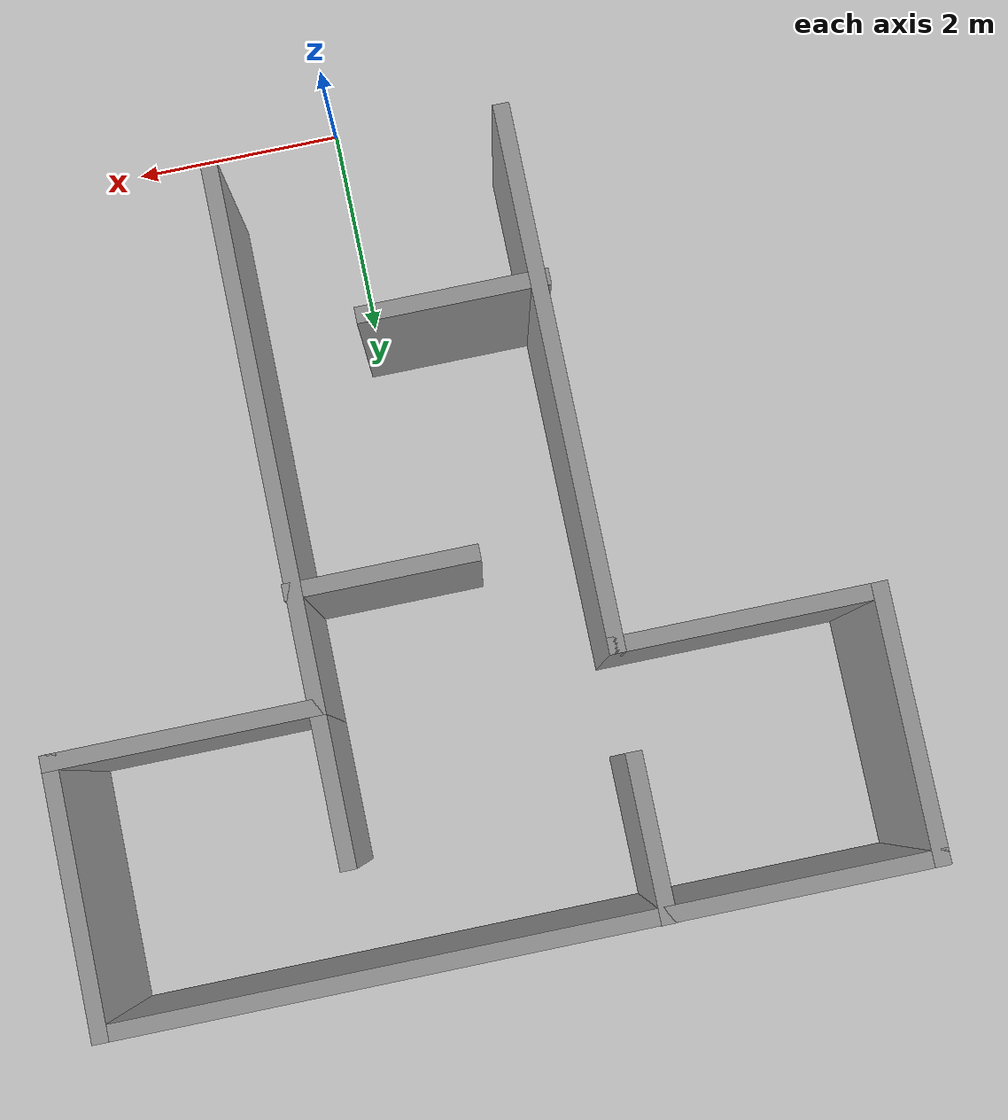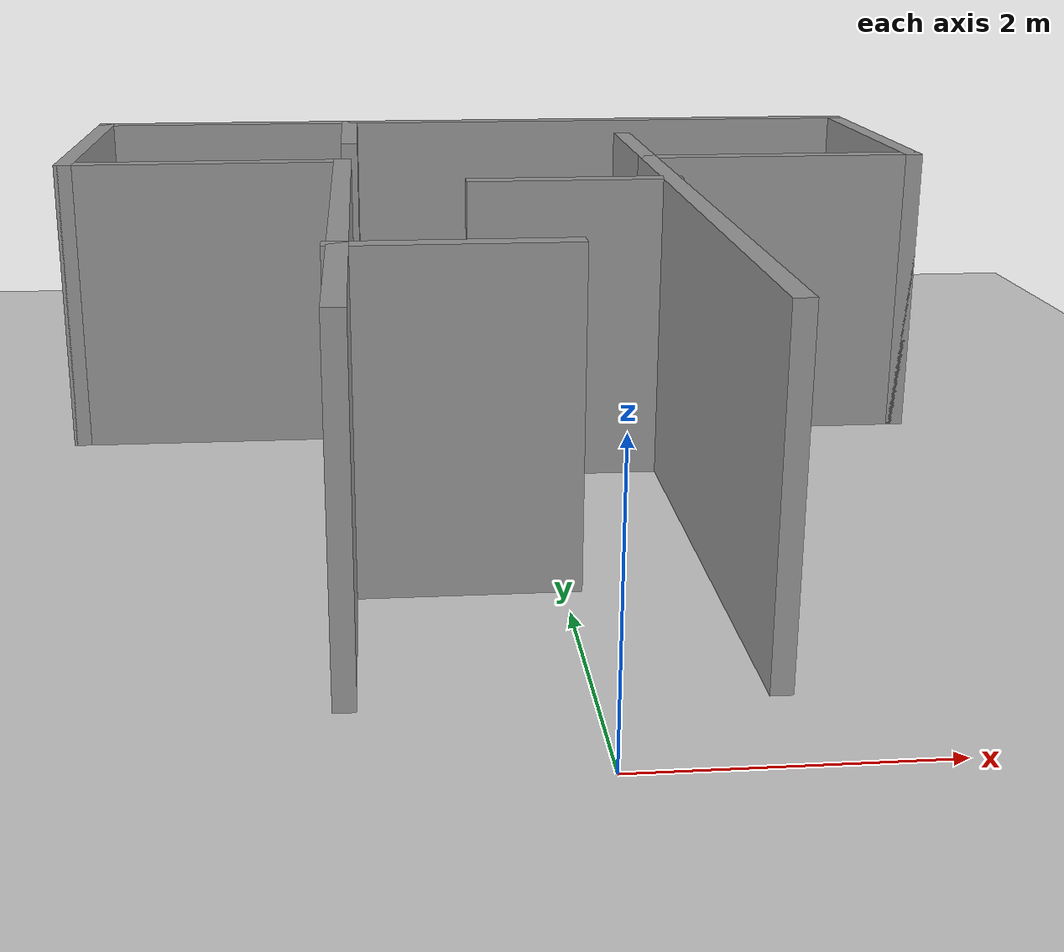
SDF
<?xml version="1.0" ?>
<sdf version="1.4">
  <world name="default">
    <include>
      <uri>model://ground_plane</uri>
    </include>
    <include>
      <uri>model://sun</uri>
    </include>
    <model name='test_world'>
    <pose frame=''>-0.193 4.45698 0 0 -0 0</pose>
    <link name='Wall_11'>
      <collision name='Wall_11_Collision'>
        <geometry>
          <box>
            <size>2.5 0.15 2.5</size>
          </box>
        </geometry>
        <pose frame=''>0 0 1.25 0 -0 0</pose>
      </collision>
      <visual name='Wall_11_Visual'>
        <pose frame=''>0 0 1.25 0 -0 0</pose>
        <geometry>
          <box>
            <size>2.5 0.15 2.5</size>
          </box>
        </geometry>
        <material>
          <script>
            <uri>file://media/materials/scripts/gazebo.material</uri>
            <name>Gazebo/Grey</name>
          </script>
          <ambient>1 1 1 1</ambient>
        </material>
        <meta>
          <layer>0</layer>
        </meta>
      </visual>
      <pose frame=''>3.675 2.42302 0 0 -0 1.5708</pose>
    </link>
    <link name='Wall_12'>
      <collision name='Wall_12_Collision'>
        <geometry>
          <box>
            <size>7.5 0.15 2.5</size>
          </box>
        </geometry>
        <pose frame=''>0 0 1.25 0 -0 0</pose>
      </collision>
      <visual name='Wall_12_Visual'>
        <pose frame=''>0 0 1.25 0 -0 0</pose>
        <geometry>
          <box>
            <size>7.5 0.15 2.5</size>
          </box>
        </geometry>
        <material>
          <script>
            <uri>file://media/materials/scripts/gazebo.material</uri>
            <name>Gazebo/Grey</name>
          </script>
          <ambient>1 1 1 1</ambient>
        </material>
        <meta>
          <layer>0</layer>
        </meta>
      </visual>
      <pose frame=''>-0 3.59802 0 0 -0 3.14159</pose>
    </link>
    <link name='Wall_16'>
      <collision name='Wall_16_Collision'>
        <geometry>
          <box>
            <size>2.5 0.15 2.5</size>
          </box>
        </geometry>
        <pose frame=''>0 0 1.25 0 -0 0</pose>
      </collision>
      <visual name='Wall_16_Visual'>
        <pose frame=''>0 0 1.25 0 -0 0</pose>
        <geometry>
          <box>
            <size>2.5 0.15 2.5</size>
          </box>
        </geometry>
        <material>
          <script>
            <uri>file://media/materials/scripts/gazebo.material</uri>
            <name>Gazebo/Grey</name>
          </script>
          <ambient>1 1 1 1</ambient>
        </material>
        <meta>
          <layer>0</layer>
        </meta>
      </visual>
      <pose frame=''>-3.675 2.42302 0 0 -0 -1.5708</pose>
    </link>
    <link name='Wall_17'>
      <collision name='Wall_17_Collision'>
        <geometry>
          <box>
            <size>2.5 0.15 2.5</size>
          </box>
        </geometry>
        <pose frame=''>0 0 1.25 0 -0 0</pose>
      </collision>
      <visual name='Wall_17_Visual'>
        <pose frame=''>0 0 1.25 0 -0 0</pose>
        <geometry>
          <box>
            <size>2.5 0.15 2.5</size>
          </box>
        </geometry>
        <material>
          <script>
            <uri>file://media/materials/scripts/gazebo.material</uri>
            <name>Gazebo/Grey</name>
          </script>
          <ambient>1 1 1 1</ambient>
        </material>
        <meta>
          <layer>0</layer>
        </meta>
      </visual>
      <pose frame=''>-2.5 1.24802 0 0 -0 0</pose>
    </link>
    <link name='Wall_19'>
      <collision name='Wall_19_Collision'>
        <geometry>
          <box>
            <size>5 0.15 2.5</size>
          </box>
        </geometry>
        <pose frame=''>0 0 1.25 0 -0 0</pose>
      </collision>
      <visual name='Wall_19_Visual'>
        <pose frame=''>0 0 1.25 0 -0 0</pose>
        <geometry>
          <box>
            <size>5 0.15 2.5</size>
          </box>
        </geometry>
        <material>
          <script>
            <uri>file://media/materials/scripts/gazebo.material</uri>
            <name>Gazebo/Grey</name>
          </script>
          <ambient>1 1 1 1</ambient>
        </material>
        <meta>
          <layer>0</layer>
        </meta>
      </visual>
      <pose frame=''>-1.325 -1.17698 0 0 -0 -1.5708</pose>
    </link>
    <link name='Wall_21'>
      <collision name='Wall_21_Collision'>
        <geometry>
          <box>
            <size>1.75 0.15 2.5</size>
          </box>
        </geometry>
        <pose frame=''>0 0 1.25 0 -0 0</pose>
      </collision>
      <visual name='Wall_21_Visual'>
        <pose frame=''>0 0 1.25 0 -0 0</pose>
        <geometry>
          <box>
            <size>1.75 0.15 2.5</size>
          </box>
        </geometry>
        <material>
          <script>
            <uri>file://media/materials/scripts/gazebo.material</uri>
            <name>Gazebo/Grey</name>
          </script>
          <ambient>1 1 1 1</ambient>
        </material>
        <meta>
          <layer>0</layer>
        </meta>
      </visual>
      <pose frame=''>-0.557944 -2.05685 0 0 -0 0</pose>
    </link>
    <link name='Wall_23'>
      <collision name='Wall_23_Collision'>
        <geometry>
          <box>
            <size>1.75 0.15 2.5</size>
          </box>
        </geometry>
        <pose frame=''>0 0 1.25 0 -0 0</pose>
      </collision>
      <visual name='Wall_23_Visual'>
        <pose frame=''>0 0 1.25 0 -0 0</pose>
        <geometry>
          <box>
            <size>1.75 0.15 2.5</size>
          </box>
        </geometry>
        <material>
          <script>
            <uri>file://media/materials/scripts/gazebo.material</uri>
            <name>Gazebo/Grey</name>
          </script>
          <ambient>1 1 1 1</ambient>
        </material>
        <meta>
          <layer>0</layer>
        </meta>
      </visual>
      <pose frame=''>0.54335 0.215339 0 0 -0 3.14159</pose>
    </link>
    <link name='Wall_25'>
      <collision name='Wall_25_Collision'>
        <geometry>
          <box>
            <size>1.5 0.15 2.5</size>
          </box>
        </geometry>
        <pose frame=''>0 0 1.25 0 -0 0</pose>
      </collision>
      <visual name='Wall_25_Visual'>
        <pose frame=''>0 0 1.25 0 -0 0</pose>
        <geometry>
          <box>
            <size>1.5 0.15 2.5</size>
          </box>
        </geometry>
        <material>
          <script>
            <uri>file://media/materials/scripts/gazebo.material</uri>
            <name>Gazebo/Grey</name>
          </script>
          <ambient>1 1 1 1</ambient>
        </material>
        <meta>
          <layer>0</layer>
        </meta>
      </visual>
      <pose frame=''>-1.27594 2.92698 0 0 -0 -1.5708</pose>
    </link>
    <link name='Wall_27'>
      <collision name='Wall_27_Collision'>
        <geometry>
          <box>
            <size>1.5 0.15 2.5</size>
          </box>
        </geometry>
        <pose frame=''>0 0 1.25 0 -0 0</pose>
      </collision>
      <visual name='Wall_27_Visual'>
        <pose frame=''>0 0 1.25 0 -0 0</pose>
        <geometry>
          <box>
            <size>1.5 0.15 2.5</size>
          </box>
        </geometry>
        <material>
          <script>
            <uri>file://media/materials/scripts/gazebo.material</uri>
            <name>Gazebo/Grey</name>
          </script>
          <ambient>1 1 1 1</ambient>
        </material>
        <meta>
          <layer>0</layer>
        </meta>
      </visual>
      <pose frame=''>1.325 1.92302 0 0 -0 1.5708</pose>
    </link>
    <link name='Wall_8'>
      <collision name='Wall_8_Collision'>
        <geometry>
          <box>
            <size>5 0.15 2.5</size>
          </box>
        </geometry>
        <pose frame=''>0 0 1.25 0 -0 0</pose>
      </collision>
      <visual name='Wall_8_Visual'>
        <pose frame=''>0 0 1.25 0 -0 0</pose>
        <geometry>
          <box>
            <size>5 0.15 2.5</size>
          </box>
        </geometry>
        <material>
          <script>
            <uri>file://media/materials/scripts/gazebo.material</uri>
            <name>Gazebo/Grey</name>
          </script>
          <ambient>1 1 1 1</ambient>
        </material>
        <meta>
          <layer>0</layer>
        </meta>
      </visual>
      <pose frame=''>1.325 -1.17698 0 0 -0 1.5708</pose>
    </link>
    <link name='Wall_9'>
      <collision name='Wall_9_Collision'>
        <geometry>
          <box>
            <size>2.5 0.15 2.5</size>
          </box>
        </geometry>
        <pose frame=''>0 0 1.25 0 -0 0</pose>
      </collision>
      <visual name='Wall_9_Visual'>
        <pose frame=''>0 0 1.25 0 -0 0</pose>
        <geometry>
          <box>
            <size>2.5 0.15 2.5</size>
          </box>
        </geometry>
        <material>
          <script>
            <uri>file://media/materials/scripts/gazebo.material</uri>
            <name>Gazebo/Grey</name>
          </script>
          <ambient>1 1 1 1</ambient>
        </material>
        <meta>
          <layer>0</layer>
        </meta>
      </visual>
      <pose frame=''>2.5 1.24802 0 0 -0 0</pose>
    </link>
    <static>1</static>
  </model>
  </world>
</sdf>
